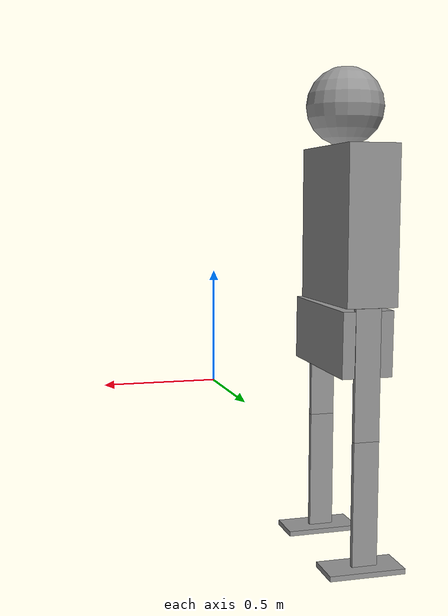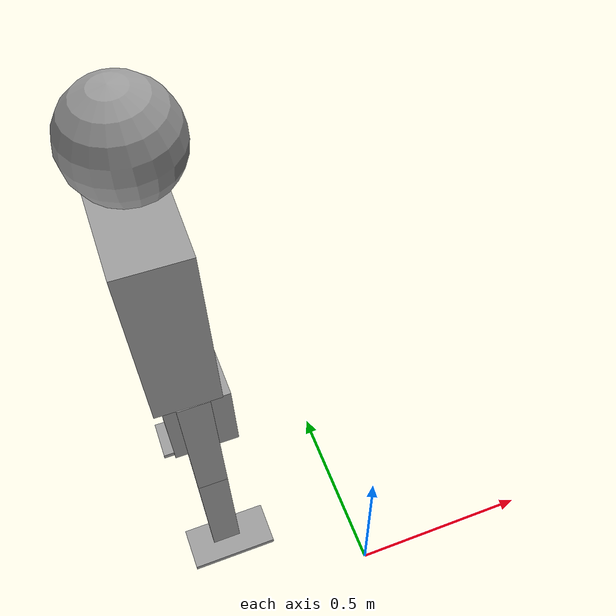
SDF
<?xml version='1.0'?>
<sdf version='1.6'>
  <model name='HumanoidRobot'>
    <link name='link_0'>
      <inertial>
        <mass>1</mass>
        <inertia>
          <ixx>0.166667</ixx>
          <ixy>0</ixy>
          <ixz>0</ixz>
          <iyy>0.166667</iyy>
          <iyz>0</iyz>
          <izz>0.166667</izz>
        </inertia>
        <pose frame=''>0 0 0 0 -0 0</pose>
      </inertial>
      <pose frame=''>-0.343615 0.441205 -0.57 0 -0 0</pose>
      <gravity>1</gravity>
      <self_collide>0</self_collide>
      <kinematic>0</kinematic>
      <enable_wind>0</enable_wind>
      <visual name='visual'>
        <pose frame=''>0 0 0 0 -0 0</pose>
        <geometry>
          <box>
            <size>0.3 0.15 0.02</size>
          </box>
        </geometry>
        <material>
          <lighting>1</lighting>
          <script>
            <uri>file://media/materials/scripts/gazebo.material</uri>
            <name>Gazebo/Grey</name>
          </script>
          <shader type='vertex'>
            <normal_map>__default__</normal_map>
          </shader>
          <ambient>0.3 0.3 0.3 1</ambient>
          <diffuse>0.7 0.7 0.7 1</diffuse>
          <specular>0.01 0.01 0.01 1</specular>
          <emissive>0 0 0 1</emissive>
        </material>
        <transparency>0</transparency>
        <cast_shadows>1</cast_shadows>
      </visual>
      <collision name='collision'>
        <laser_retro>0</laser_retro>
        <max_contacts>10</max_contacts>
        <pose frame=''>0 0 0 0 -0 0</pose>
        <geometry>
          <box>
            <size>0.3 0.15 0.02</size>
          </box>
        </geometry>
        <surface>
          <friction>
            <ode>
              <mu>1</mu>
              <mu2>1</mu2>
              <fdir1>0 0 0</fdir1>
              <slip1>0</slip1>
              <slip2>0</slip2>
            </ode>
            <torsional>
              <coefficient>1</coefficient>
              <patch_radius>0</patch_radius>
              <surface_radius>0</surface_radius>
              <use_patch_radius>1</use_patch_radius>
              <ode>
                <slip>0</slip>
              </ode>
            </torsional>
          </friction>
          <bounce>
            <restitution_coefficient>0</restitution_coefficient>
            <threshold>1e+06</threshold>
          </bounce>
          <contact>
            <collide_without_contact>0</collide_without_contact>
            <collide_without_contact_bitmask>1</collide_without_contact_bitmask>
            <collide_bitmask>1</collide_bitmask>
            <ode>
              <soft_cfm>0</soft_cfm>
              <soft_erp>0.2</soft_erp>
              <kp>1e+13</kp>
              <kd>1</kd>
              <max_vel>0.01</max_vel>
              <min_depth>0</min_depth>
            </ode>
            <bullet>
              <split_impulse>1</split_impulse>
              <split_impulse_penetration_threshold>-0.01</split_impulse_penetration_threshold>
              <soft_cfm>0</soft_cfm>
              <soft_erp>0.2</soft_erp>
              <kp>1e+13</kp>
              <kd>1</kd>
            </bullet>
          </contact>
        </surface>
      </collision>
    </link>
    <link name='link_0_0'>
      <inertial>
        <mass>1</mass>
        <inertia>
          <ixx>0.166667</ixx>
          <ixy>0</ixy>
          <ixz>0</ixz>
          <iyy>0.166667</iyy>
          <iyz>0</iyz>
          <izz>0.166667</izz>
        </inertia>
        <pose frame=''>0 0 0 0 -0 0</pose>
      </inertial>
      <pose frame=''>-0.343165 0.687318 0.290025 -0.02 -0 0.000135</pose>
      <self_collide>0</self_collide>
      <enable_wind>0</enable_wind>
      <kinematic>0</kinematic>
      <gravity>1</gravity>
      <visual name='visual'>
        <pose frame=''>0 0 0 0 -0 0</pose>
        <geometry>
          <box>
            <size>0.2 0.5 0.25</size>
          </box>
        </geometry>
        <material>
          <lighting>1</lighting>
          <script>
            <uri>file://media/materials/scripts/gazebo.material</uri>
            <name>Gazebo/Grey</name>
          </script>
          <emissive>0 0 0 1</emissive>
          <shader type='vertex'>
            <normal_map>__default__</normal_map>
          </shader>
          <ambient>0.3 0.3 0.3 1</ambient>
          <diffuse>0.7 0.7 0.7 1</diffuse>
          <specular>0.01 0.01 0.01 1</specular>
        </material>
        <transparency>0</transparency>
        <cast_shadows>1</cast_shadows>
      </visual>
      <collision name='collision'>
        <laser_retro>0</laser_retro>
        <max_contacts>10</max_contacts>
        <pose frame=''>0 0 0 0 -0 0</pose>
        <geometry>
          <box>
            <size>0.2 0.5 0.25</size>
          </box>
        </geometry>
        <surface>
          <friction>
            <ode>
              <mu>1</mu>
              <mu2>1</mu2>
              <fdir1>0 0 0</fdir1>
              <slip1>0</slip1>
              <slip2>0</slip2>
            </ode>
            <torsional>
              <coefficient>1</coefficient>
              <patch_radius>0</patch_radius>
              <surface_radius>0</surface_radius>
              <use_patch_radius>1</use_patch_radius>
              <ode>
                <slip>0</slip>
              </ode>
            </torsional>
          </friction>
          <bounce>
            <restitution_coefficient>0</restitution_coefficient>
            <threshold>1e+06</threshold>
          </bounce>
          <contact>
            <collide_without_contact>0</collide_without_contact>
            <collide_without_contact_bitmask>1</collide_without_contact_bitmask>
            <collide_bitmask>1</collide_bitmask>
            <ode>
              <soft_cfm>0</soft_cfm>
              <soft_erp>0.2</soft_erp>
              <kp>1e+13</kp>
              <kd>1</kd>
              <max_vel>0.01</max_vel>
              <min_depth>0</min_depth>
            </ode>
            <bullet>
              <split_impulse>1</split_impulse>
              <split_impulse_penetration_threshold>-0.01</split_impulse_penetration_threshold>
              <soft_cfm>0</soft_cfm>
              <soft_erp>0.2</soft_erp>
              <kp>1e+13</kp>
              <kd>1</kd>
            </bullet>
          </contact>
        </surface>
      </collision>
    </link>
    <link name='link_0_1'>
      <inertial>
        <mass>1</mass>
        <inertia>
          <ixx>0.166667</ixx>
          <ixy>0</ixy>
          <ixz>0</ixz>
          <iyy>0.166667</iyy>
          <iyz>0</iyz>
          <izz>0.166667</izz>
        </inertia>
        <pose frame=''>0 0 0 0 -0 0</pose>
      </inertial>
      <pose frame=''>-0.363163 0.687646 0.720003 1.1e-05 -1e-06 -0.016637</pose>
      <gravity>1</gravity>
      <self_collide>0</self_collide>
      <kinematic>0</kinematic>
      <enable_wind>0</enable_wind>
      <visual name='visual'>
        <pose frame=''>0 0 0 0 -0 0</pose>
        <geometry>
          <box>
            <size>0.2 0.5 0.6</size>
          </box>
        </geometry>
        <material>
          <lighting>1</lighting>
          <script>
            <uri>file://media/materials/scripts/gazebo.material</uri>
            <name>Gazebo/Grey</name>
          </script>
          <shader type='vertex'>
            <normal_map>__default__</normal_map>
          </shader>
          <ambient>0.3 0.3 0.3 1</ambient>
          <diffuse>0.7 0.7 0.7 1</diffuse>
          <specular>0.01 0.01 0.01 1</specular>
          <emissive>0 0 0 1</emissive>
        </material>
        <transparency>0</transparency>
        <cast_shadows>1</cast_shadows>
      </visual>
      <collision name='collision'>
        <laser_retro>0</laser_retro>
        <max_contacts>10</max_contacts>
        <pose frame=''>0 0 0 0 -0 0</pose>
        <geometry>
          <box>
            <size>0.2 0.5 0.6</size>
          </box>
        </geometry>
        <surface>
          <friction>
            <ode>
              <mu>1</mu>
              <mu2>1</mu2>
              <fdir1>0 0 0</fdir1>
              <slip1>0</slip1>
              <slip2>0</slip2>
            </ode>
            <torsional>
              <coefficient>1</coefficient>
              <patch_radius>0</patch_radius>
              <surface_radius>0</surface_radius>
              <use_patch_radius>1</use_patch_radius>
              <ode>
                <slip>0</slip>
              </ode>
            </torsional>
          </friction>
          <bounce>
            <restitution_coefficient>0</restitution_coefficient>
            <threshold>1e+06</threshold>
          </bounce>
          <contact>
            <collide_without_contact>0</collide_without_contact>
            <collide_without_contact_bitmask>1</collide_without_contact_bitmask>
            <collide_bitmask>1</collide_bitmask>
            <ode>
              <soft_cfm>0</soft_cfm>
              <soft_erp>0.2</soft_erp>
              <kp>1e+13</kp>
              <kd>1</kd>
              <max_vel>0.01</max_vel>
              <min_depth>0</min_depth>
            </ode>
            <bullet>
              <split_impulse>1</split_impulse>
              <split_impulse_penetration_threshold>-0.01</split_impulse_penetration_threshold>
              <soft_cfm>0</soft_cfm>
              <soft_erp>0.2</soft_erp>
              <kp>1e+13</kp>
              <kd>1</kd>
            </bullet>
          </contact>
        </surface>
      </collision>
    </link>
    <link name='link_0_clone'>
      <inertial>
        <mass>1</mass>
        <inertia>
          <ixx>0.166667</ixx>
          <ixy>0</ixy>
          <ixz>0</ixz>
          <iyy>0.166667</iyy>
          <iyz>0</iyz>
          <izz>0.166667</izz>
        </inertia>
        <pose frame=''>0 0 0 0 -0 0</pose>
      </inertial>
      <pose frame=''>-0.332418 0.927316 -0.56999 1.1e-05 -1e-06 -0.016637</pose>
      <gravity>1</gravity>
      <self_collide>0</self_collide>
      <kinematic>0</kinematic>
      <enable_wind>0</enable_wind>
      <visual name='visual'>
        <pose frame=''>0 0 0 0 -0 0</pose>
        <geometry>
          <box>
            <size>0.3 0.15 0.02</size>
          </box>
        </geometry>
        <material>
          <lighting>1</lighting>
          <script>
            <uri>file://media/materials/scripts/gazebo.material</uri>
            <name>Gazebo/Grey</name>
          </script>
          <shader type='vertex'>
            <normal_map>__default__</normal_map>
          </shader>
          <ambient>0.3 0.3 0.3 1</ambient>
          <diffuse>0.7 0.7 0.7 1</diffuse>
          <specular>0.01 0.01 0.01 1</specular>
          <emissive>0 0 0 1</emissive>
        </material>
        <transparency>0</transparency>
        <cast_shadows>1</cast_shadows>
      </visual>
      <collision name='collision'>
        <laser_retro>0</laser_retro>
        <max_contacts>10</max_contacts>
        <pose frame=''>0 0 0 0 -0 0</pose>
        <geometry>
          <box>
            <size>0.3 0.15 0.02</size>
          </box>
        </geometry>
        <surface>
          <friction>
            <ode>
              <mu>1</mu>
              <mu2>1</mu2>
              <fdir1>0 0 0</fdir1>
              <slip1>0</slip1>
              <slip2>0</slip2>
            </ode>
            <torsional>
              <coefficient>1</coefficient>
              <patch_radius>0</patch_radius>
              <surface_radius>0</surface_radius>
              <use_patch_radius>1</use_patch_radius>
              <ode>
                <slip>0</slip>
              </ode>
            </torsional>
          </friction>
          <bounce>
            <restitution_coefficient>0</restitution_coefficient>
            <threshold>1e+06</threshold>
          </bounce>
          <contact>
            <collide_without_contact>0</collide_without_contact>
            <collide_without_contact_bitmask>1</collide_without_contact_bitmask>
            <collide_bitmask>1</collide_bitmask>
            <ode>
              <soft_cfm>0</soft_cfm>
              <soft_erp>0.2</soft_erp>
              <kp>1e+13</kp>
              <kd>1</kd>
              <max_vel>0.01</max_vel>
              <min_depth>0</min_depth>
            </ode>
            <bullet>
              <split_impulse>1</split_impulse>
              <split_impulse_penetration_threshold>-0.01</split_impulse_penetration_threshold>
              <soft_cfm>0</soft_cfm>
              <soft_erp>0.2</soft_erp>
              <kp>1e+13</kp>
              <kd>1</kd>
            </bullet>
          </contact>
        </surface>
      </collision>
    </link>
    <link name='link_1'>
      <inertial>
        <mass>1</mass>
        <inertia>
          <ixx>0.166667</ixx>
          <ixy>0</ixy>
          <ixz>0</ixz>
          <iyy>0.166667</iyy>
          <iyz>0</iyz>
          <izz>0.166667</izz>
        </inertia>
        <pose frame=''>0 0 0 0 -0 0</pose>
      </inertial>
      <pose frame=''>-0.35434 0.444776 -0.33 0 -0 0</pose>
      <gravity>1</gravity>
      <self_collide>0</self_collide>
      <kinematic>0</kinematic>
      <enable_wind>0</enable_wind>
      <visual name='visual'>
        <pose frame=''>0 0 0 0 -0 0</pose>
        <geometry>
          <box>
            <size>0.1 0.02 0.5</size>
          </box>
        </geometry>
        <material>
          <lighting>1</lighting>
          <script>
            <uri>file://media/materials/scripts/gazebo.material</uri>
            <name>Gazebo/Grey</name>
          </script>
          <shader type='vertex'>
            <normal_map>__default__</normal_map>
          </shader>
          <ambient>0.3 0.3 0.3 1</ambient>
          <diffuse>0.7 0.7 0.7 1</diffuse>
          <specular>0.01 0.01 0.01 1</specular>
          <emissive>0 0 0 1</emissive>
        </material>
        <transparency>0</transparency>
        <cast_shadows>1</cast_shadows>
      </visual>
      <collision name='collision'>
        <laser_retro>0</laser_retro>
        <max_contacts>10</max_contacts>
        <pose frame=''>0 0 0 0 -0 0</pose>
        <geometry>
          <box>
            <size>0.1 0.02 0.5</size>
          </box>
        </geometry>
        <surface>
          <friction>
            <ode>
              <mu>1</mu>
              <mu2>1</mu2>
              <fdir1>0 0 0</fdir1>
              <slip1>0</slip1>
              <slip2>0</slip2>
            </ode>
            <torsional>
              <coefficient>1</coefficient>
              <patch_radius>0</patch_radius>
              <surface_radius>0</surface_radius>
              <use_patch_radius>1</use_patch_radius>
              <ode>
                <slip>0</slip>
              </ode>
            </torsional>
          </friction>
          <bounce>
            <restitution_coefficient>0</restitution_coefficient>
            <threshold>1e+06</threshold>
          </bounce>
          <contact>
            <collide_without_contact>0</collide_without_contact>
            <collide_without_contact_bitmask>1</collide_without_contact_bitmask>
            <collide_bitmask>1</collide_bitmask>
            <ode>
              <soft_cfm>0</soft_cfm>
              <soft_erp>0.2</soft_erp>
              <kp>1e+13</kp>
              <kd>1</kd>
              <max_vel>0.01</max_vel>
              <min_depth>0</min_depth>
            </ode>
            <bullet>
              <split_impulse>1</split_impulse>
              <split_impulse_penetration_threshold>-0.01</split_impulse_penetration_threshold>
              <soft_cfm>0</soft_cfm>
              <soft_erp>0.2</soft_erp>
              <kp>1e+13</kp>
              <kd>1</kd>
            </bullet>
          </contact>
        </surface>
      </collision>
    </link>
    <link name='link_1_0'>
      <inertial>
        <mass>1</mass>
        <inertia>
          <ixx>0.1</ixx>
          <ixy>0</ixy>
          <ixz>0</ixz>
          <iyy>0.1</iyy>
          <iyz>0</iyz>
          <izz>0.1</izz>
        </inertia>
        <pose frame=''>0 0 0 0 -0 0</pose>
      </inertial>
      <pose frame=''>-0.343166 0.687308 1.17 1.1e-05 -1e-06 -0.016637</pose>
      <gravity>1</gravity>
      <self_collide>0</self_collide>
      <kinematic>0</kinematic>
      <enable_wind>0</enable_wind>
      <visual name='visual'>
        <pose frame=''>0 0 0 0 -0 0</pose>
        <geometry>
          <sphere>
            <radius>0.15</radius>
          </sphere>
        </geometry>
        <material>
          <lighting>1</lighting>
          <script>
            <uri>file://media/materials/scripts/gazebo.material</uri>
            <name>Gazebo/Grey</name>
          </script>
          <shader type='vertex'>
            <normal_map>__default__</normal_map>
          </shader>
          <ambient>0.3 0.3 0.3 1</ambient>
          <diffuse>0.7 0.7 0.7 1</diffuse>
          <specular>0.01 0.01 0.01 1</specular>
          <emissive>0 0 0 1</emissive>
        </material>
        <transparency>0</transparency>
        <cast_shadows>1</cast_shadows>
      </visual>
      <collision name='collision'>
        <laser_retro>0</laser_retro>
        <max_contacts>10</max_contacts>
        <pose frame=''>0 0 0 0 -0 0</pose>
        <geometry>
          <sphere>
            <radius>0.15</radius>
          </sphere>
        </geometry>
        <surface>
          <friction>
            <ode>
              <mu>1</mu>
              <mu2>1</mu2>
              <fdir1>0 0 0</fdir1>
              <slip1>0</slip1>
              <slip2>0</slip2>
            </ode>
            <torsional>
              <coefficient>1</coefficient>
              <patch_radius>0</patch_radius>
              <surface_radius>0</surface_radius>
              <use_patch_radius>1</use_patch_radius>
              <ode>
                <slip>0</slip>
              </ode>
            </torsional>
          </friction>
          <bounce>
            <restitution_coefficient>0</restitution_coefficient>
            <threshold>1e+06</threshold>
          </bounce>
          <contact>
            <collide_without_contact>0</collide_without_contact>
            <collide_without_contact_bitmask>1</collide_without_contact_bitmask>
            <collide_bitmask>1</collide_bitmask>
            <ode>
              <soft_cfm>0</soft_cfm>
              <soft_erp>0.2</soft_erp>
              <kp>1e+13</kp>
              <kd>1</kd>
              <max_vel>0.01</max_vel>
              <min_depth>0</min_depth>
            </ode>
            <bullet>
              <split_impulse>1</split_impulse>
              <split_impulse_penetration_threshold>-0.01</split_impulse_penetration_threshold>
              <soft_cfm>0</soft_cfm>
              <soft_erp>0.2</soft_erp>
              <kp>1e+13</kp>
              <kd>1</kd>
            </bullet>
          </contact>
        </surface>
      </collision>
    </link>
    <link name='link_1_clone'>
      <inertial>
        <mass>1</mass>
        <inertia>
          <ixx>0.166667</ixx>
          <ixy>0</ixy>
          <ixz>0</ixz>
          <iyy>0.166667</iyy>
          <iyz>0</iyz>
          <izz>0.166667</izz>
        </inertia>
        <pose frame=''>0 0 0 0 -0 0</pose>
      </inertial>
      <pose frame=''>-0.354336 0.444783 0.17 0 -0 0.000135</pose>
      <gravity>1</gravity>
      <self_collide>0</self_collide>
      <kinematic>0</kinematic>
      <enable_wind>0</enable_wind>
      <visual name='visual'>
        <pose frame=''>0 0 0 0 -0 0</pose>
        <geometry>
          <box>
            <size>0.1 0.02 0.5</size>
          </box>
        </geometry>
        <material>
          <lighting>1</lighting>
          <script>
            <uri>file://media/materials/scripts/gazebo.material</uri>
            <name>Gazebo/Grey</name>
          </script>
          <shader type='vertex'>
            <normal_map>__default__</normal_map>
          </shader>
          <ambient>0.3 0.3 0.3 1</ambient>
          <diffuse>0.7 0.7 0.7 1</diffuse>
          <specular>0.01 0.01 0.01 1</specular>
          <emissive>0 0 0 1</emissive>
        </material>
        <transparency>0</transparency>
        <cast_shadows>1</cast_shadows>
      </visual>
      <collision name='collision'>
        <laser_retro>0</laser_retro>
        <max_contacts>10</max_contacts>
        <pose frame=''>0 0 0 0 -0 0</pose>
        <geometry>
          <box>
            <size>0.1 0.02 0.5</size>
          </box>
        </geometry>
        <surface>
          <friction>
            <ode>
              <mu>1</mu>
              <mu2>1</mu2>
              <fdir1>0 0 0</fdir1>
              <slip1>0</slip1>
              <slip2>0</slip2>
            </ode>
            <torsional>
              <coefficient>1</coefficient>
              <patch_radius>0</patch_radius>
              <surface_radius>0</surface_radius>
              <use_patch_radius>1</use_patch_radius>
              <ode>
                <slip>0</slip>
              </ode>
            </torsional>
          </friction>
          <bounce>
            <restitution_coefficient>0</restitution_coefficient>
            <threshold>1e+06</threshold>
          </bounce>
          <contact>
            <collide_without_contact>0</collide_without_contact>
            <collide_without_contact_bitmask>1</collide_without_contact_bitmask>
            <collide_bitmask>1</collide_bitmask>
            <ode>
              <soft_cfm>0</soft_cfm>
              <soft_erp>0.2</soft_erp>
              <kp>1e+13</kp>
              <kd>1</kd>
              <max_vel>0.01</max_vel>
              <min_depth>0</min_depth>
            </ode>
            <bullet>
              <split_impulse>1</split_impulse>
              <split_impulse_penetration_threshold>-0.01</split_impulse_penetration_threshold>
              <soft_cfm>0</soft_cfm>
              <soft_erp>0.2</soft_erp>
              <kp>1e+13</kp>
              <kd>1</kd>
            </bullet>
          </contact>
        </surface>
      </collision>
    </link>
    <link name='link_1_clone_clone'>
      <inertial>
        <mass>1</mass>
        <inertia>
          <ixx>0.166667</ixx>
          <ixy>0</ixy>
          <ixz>0</ixz>
          <iyy>0.166667</iyy>
          <iyz>0</iyz>
          <izz>0.166667</izz>
        </inertia>
        <pose frame=''>0 0 0 0 -0 0</pose>
      </inertial>
      <pose frame=''>-0.342645 0.929993 0.17001 2e-05 0 -0.002009</pose>
      <gravity>1</gravity>
      <self_collide>0</self_collide>
      <kinematic>0</kinematic>
      <enable_wind>0</enable_wind>
      <visual name='visual'>
        <pose frame=''>0 0 0 0 -0 0</pose>
        <geometry>
          <box>
            <size>0.1 0.02 0.5</size>
          </box>
        </geometry>
        <material>
          <lighting>1</lighting>
          <script>
            <uri>file://media/materials/scripts/gazebo.material</uri>
            <name>Gazebo/Grey</name>
          </script>
          <shader type='vertex'>
            <normal_map>__default__</normal_map>
          </shader>
          <ambient>0.3 0.3 0.3 1</ambient>
          <diffuse>0.7 0.7 0.7 1</diffuse>
          <specular>0.01 0.01 0.01 1</specular>
          <emissive>0 0 0 1</emissive>
        </material>
        <transparency>0</transparency>
        <cast_shadows>1</cast_shadows>
      </visual>
      <collision name='collision'>
        <laser_retro>0</laser_retro>
        <max_contacts>10</max_contacts>
        <pose frame=''>0 0 0 0 -0 0</pose>
        <geometry>
          <box>
            <size>0.1 0.02 0.5</size>
          </box>
        </geometry>
        <surface>
          <friction>
            <ode>
              <mu>1</mu>
              <mu2>1</mu2>
              <fdir1>0 0 0</fdir1>
              <slip1>0</slip1>
              <slip2>0</slip2>
            </ode>
            <torsional>
              <coefficient>1</coefficient>
              <patch_radius>0</patch_radius>
              <surface_radius>0</surface_radius>
              <use_patch_radius>1</use_patch_radius>
              <ode>
                <slip>0</slip>
              </ode>
            </torsional>
          </friction>
          <bounce>
            <restitution_coefficient>0</restitution_coefficient>
            <threshold>1e+06</threshold>
          </bounce>
          <contact>
            <collide_without_contact>0</collide_without_contact>
            <collide_without_contact_bitmask>1</collide_without_contact_bitmask>
            <collide_bitmask>1</collide_bitmask>
            <ode>
              <soft_cfm>0</soft_cfm>
              <soft_erp>0.2</soft_erp>
              <kp>1e+13</kp>
              <kd>1</kd>
              <max_vel>0.01</max_vel>
              <min_depth>0</min_depth>
            </ode>
            <bullet>
              <split_impulse>1</split_impulse>
              <split_impulse_penetration_threshold>-0.01</split_impulse_penetration_threshold>
              <soft_cfm>0</soft_cfm>
              <soft_erp>0.2</soft_erp>
              <kp>1e+13</kp>
              <kd>1</kd>
            </bullet>
          </contact>
        </surface>
      </collision>
    </link>
    <link name='link_1_clone_clone_0'>
      <inertial>
        <mass>1</mass>
        <inertia>
          <ixx>0.166667</ixx>
          <ixy>0</ixy>
          <ixz>0</ixz>
          <iyy>0.166667</iyy>
          <iyz>0</iyz>
          <izz>0.166667</izz>
        </inertia>
        <pose frame=''>0 0 0 0 -0 0</pose>
      </inertial>
      <pose frame=''>-0.342645 0.930003 -0.32999 2e-05 0 -0.002009</pose>
      <gravity>1</gravity>
      <self_collide>0</self_collide>
      <kinematic>0</kinematic>
      <enable_wind>0</enable_wind>
      <visual name='visual'>
        <pose frame=''>0 0 0 0 -0 0</pose>
        <geometry>
          <box>
            <size>0.1 0.02 0.5</size>
          </box>
        </geometry>
        <material>
          <lighting>1</lighting>
          <script>
            <uri>file://media/materials/scripts/gazebo.material</uri>
            <name>Gazebo/Grey</name>
          </script>
          <shader type='vertex'>
            <normal_map>__default__</normal_map>
          </shader>
          <ambient>0.3 0.3 0.3 1</ambient>
          <diffuse>0.7 0.7 0.7 1</diffuse>
          <specular>0.01 0.01 0.01 1</specular>
          <emissive>0 0 0 1</emissive>
        </material>
        <transparency>0</transparency>
        <cast_shadows>1</cast_shadows>
      </visual>
      <collision name='collision'>
        <laser_retro>0</laser_retro>
        <max_contacts>10</max_contacts>
        <pose frame=''>0 0 0 0 -0 0</pose>
        <geometry>
          <box>
            <size>0.1 0.02 0.5</size>
          </box>
        </geometry>
        <surface>
          <friction>
            <ode>
              <mu>1</mu>
              <mu2>1</mu2>
              <fdir1>0 0 0</fdir1>
              <slip1>0</slip1>
              <slip2>0</slip2>
            </ode>
            <torsional>
              <coefficient>1</coefficient>
              <patch_radius>0</patch_radius>
              <surface_radius>0</surface_radius>
              <use_patch_radius>1</use_patch_radius>
              <ode>
                <slip>0</slip>
              </ode>
            </torsional>
          </friction>
          <bounce>
            <restitution_coefficient>0</restitution_coefficient>
            <threshold>1e+06</threshold>
          </bounce>
          <contact>
            <collide_without_contact>0</collide_without_contact>
            <collide_without_contact_bitmask>1</collide_without_contact_bitmask>
            <collide_bitmask>1</collide_bitmask>
            <ode>
              <soft_cfm>0</soft_cfm>
              <soft_erp>0.2</soft_erp>
              <kp>1e+13</kp>
              <kd>1</kd>
              <max_vel>0.01</max_vel>
              <min_depth>0</min_depth>
            </ode>
            <bullet>
              <split_impulse>1</split_impulse>
              <split_impulse_penetration_threshold>-0.01</split_impulse_penetration_threshold>
              <soft_cfm>0</soft_cfm>
              <soft_erp>0.2</soft_erp>
              <kp>1e+13</kp>
              <kd>1</kd>
            </bullet>
          </contact>
        </surface>
      </collision>
    </link>
    <joint name='link_0_0_JOINT_1' type='fixed'>
      <parent>link_0_0</parent>
      <child>link_0_1</child>
      <pose frame=''>0 0 0 0 -0 0</pose>
      <physics>
        <ode>
          <limit>
            <cfm>0</cfm>
            <erp>0.2</erp>
          </limit>
          <suspension>
            <cfm>0</cfm>
            <erp>0.2</erp>
          </suspension>
        </ode>
      </physics>
    </joint>
    <joint name='link_0_0_JOINT_3' type='fixed'>
      <parent>link_0_0</parent>
      <child>link_1_clone_clone</child>
      <pose frame=''>0 0 0 0 -0 0</pose>
      <physics>
        <ode>
          <limit>
            <cfm>0</cfm>
            <erp>0.2</erp>
          </limit>
          <suspension>
            <cfm>0</cfm>
            <erp>0.2</erp>
          </suspension>
        </ode>
      </physics>
    </joint>
    <joint name='link_0_1_JOINT_3' type='fixed'>
      <parent>link_0_1</parent>
      <child>link_1_0</child>
      <pose frame=''>0 0 0 0 -0 0</pose>
      <physics>
        <ode>
          <limit>
            <cfm>0</cfm>
            <erp>0.2</erp>
          </limit>
          <suspension>
            <cfm>0</cfm>
            <erp>0.2</erp>
          </suspension>
        </ode>
      </physics>
    </joint>
    <joint name='link_0_JOINT_0' type='fixed'>
      <parent>link_0</parent>
      <child>link_1</child>
      <pose frame=''>0 0 0 0 -0 0</pose>
      <physics>
        <ode>
          <limit>
            <cfm>0</cfm>
            <erp>0.2</erp>
          </limit>
          <suspension>
            <cfm>0</cfm>
            <erp>0.2</erp>
          </suspension>
        </ode>
      </physics>
    </joint>
    <joint name='link_1_JOINT_0' type='fixed'>
      <parent>link_1</parent>
      <child>link_1_clone</child>
      <pose frame=''>0 0 0 0 -0 0</pose>
      <physics>
        <ode>
          <limit>
            <cfm>0</cfm>
            <erp>0.2</erp>
          </limit>
          <suspension>
            <cfm>0</cfm>
            <erp>0.2</erp>
          </suspension>
        </ode>
      </physics>
    </joint>
    <joint name='link_1_clone_JOINT_1' type='fixed'>
      <parent>link_1_clone</parent>
      <child>link_0_0</child>
      <pose frame=''>0 0 0 0 -0 0</pose>
      <physics>
        <ode>
          <limit>
            <cfm>0</cfm>
            <erp>0.2</erp>
          </limit>
          <suspension>
            <cfm>0</cfm>
            <erp>0.2</erp>
          </suspension>
        </ode>
      </physics>
    </joint>
    <joint name='link_1_clone_clone_0_JOINT_0' type='revolute'>
      <parent>link_1_clone_clone_0</parent>
      <child>link_0_clone</child>
      <pose frame=''>0 0 0 0 -0 0</pose>
      <axis>
        <xyz>1 0 0</xyz>
        <use_parent_model_frame>0</use_parent_model_frame>
        <limit>
          <lower>-1.79769e+308</lower>
          <upper>1.79769e+308</upper>
          <effort>-1</effort>
          <velocity>-1</velocity>
        </limit>
        <dynamics>
          <spring_reference>0</spring_reference>
          <spring_stiffness>0</spring_stiffness>
          <damping>0</damping>
        </dynamics>
      </axis>
      <physics>
        <ode>
          <limit>
            <cfm>0</cfm>
            <erp>0.2</erp>
          </limit>
          <suspension>
            <cfm>0</cfm>
            <erp>0.2</erp>
          </suspension>
        </ode>
      </physics>
    </joint>
    <joint name='link_1_clone_clone_JOINT_5' type='fixed'>
      <parent>link_1_clone_clone</parent>
      <child>link_1_clone_clone_0</child>
      <pose frame=''>0 0 0 0 -0 0</pose>
      <physics>
        <ode>
          <limit>
            <cfm>0</cfm>
            <erp>0.2</erp>
          </limit>
          <suspension>
            <cfm>0</cfm>
            <erp>0.2</erp>
          </suspension>
        </ode>
      </physics>
    </joint>
    <static>0</static>
    <allow_auto_disable>1</allow_auto_disable>
  </model>
</sdf>
